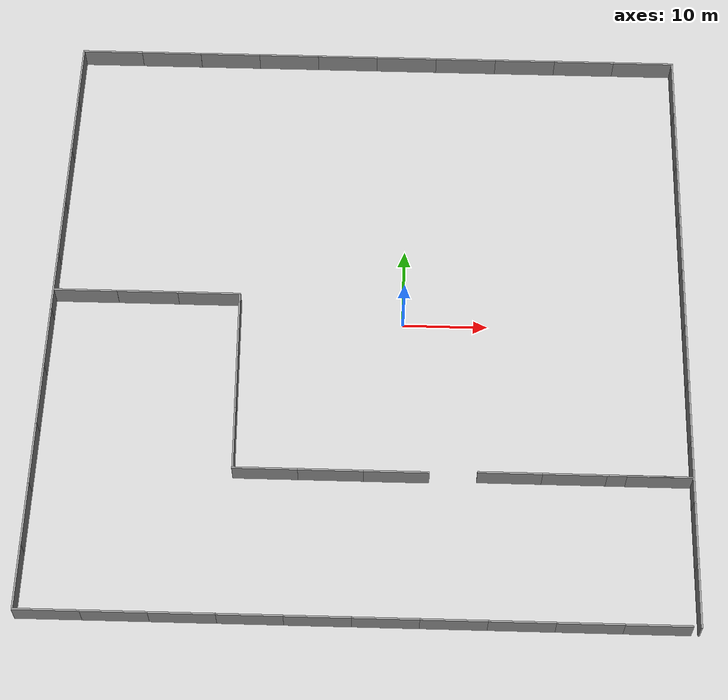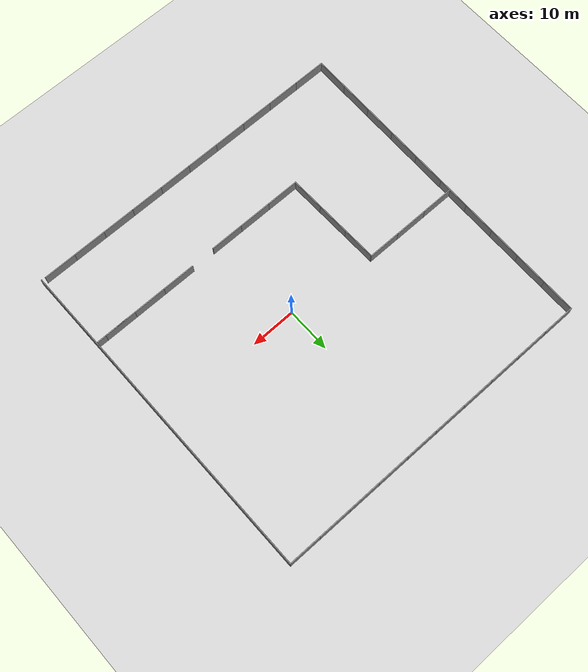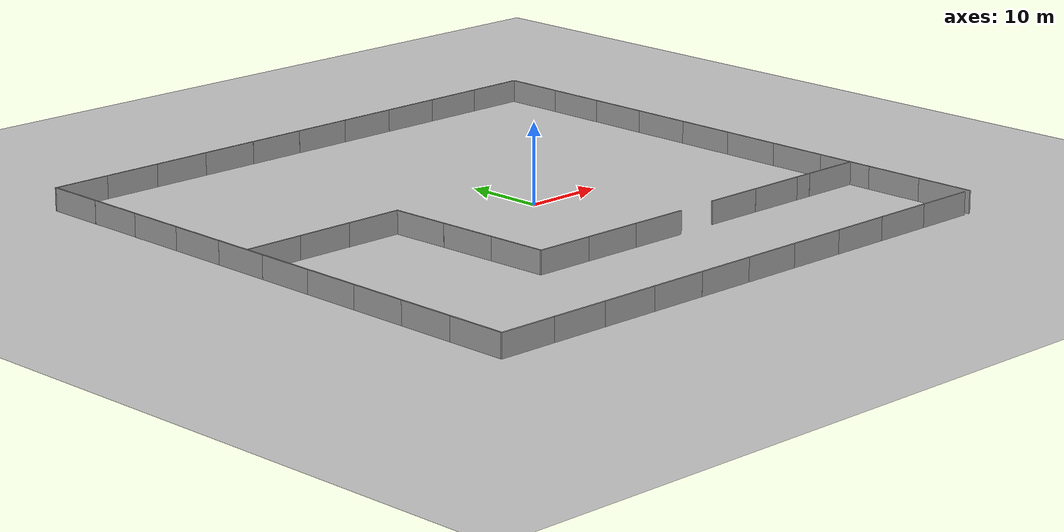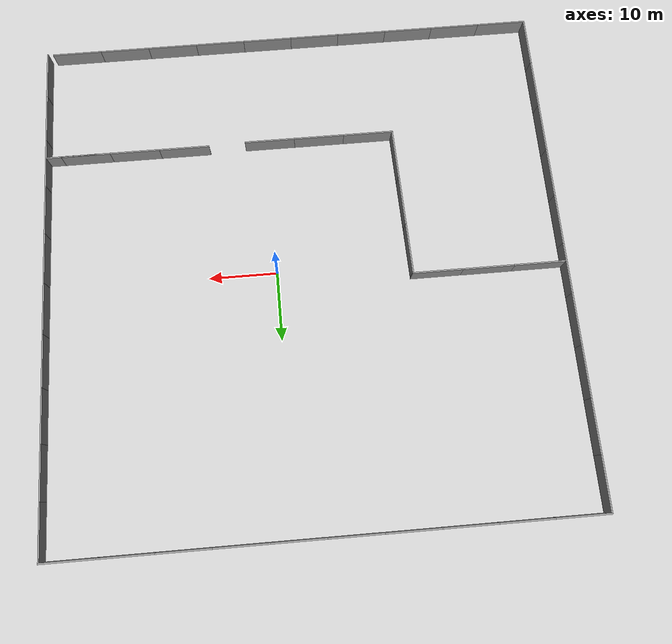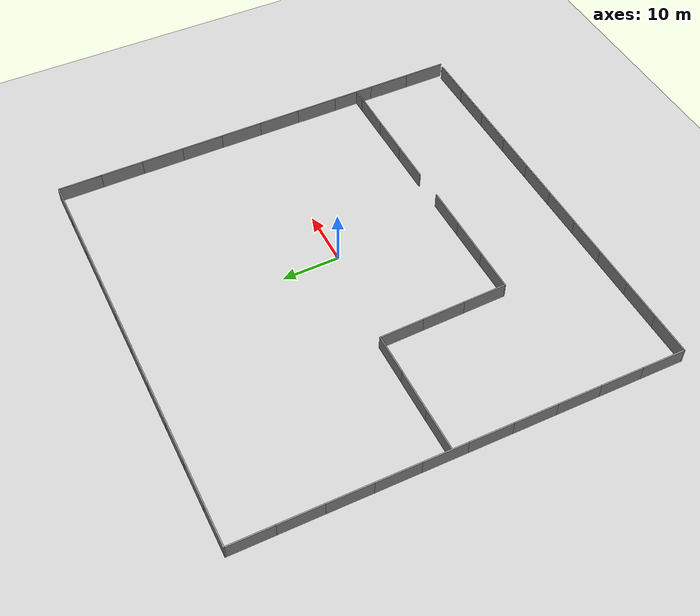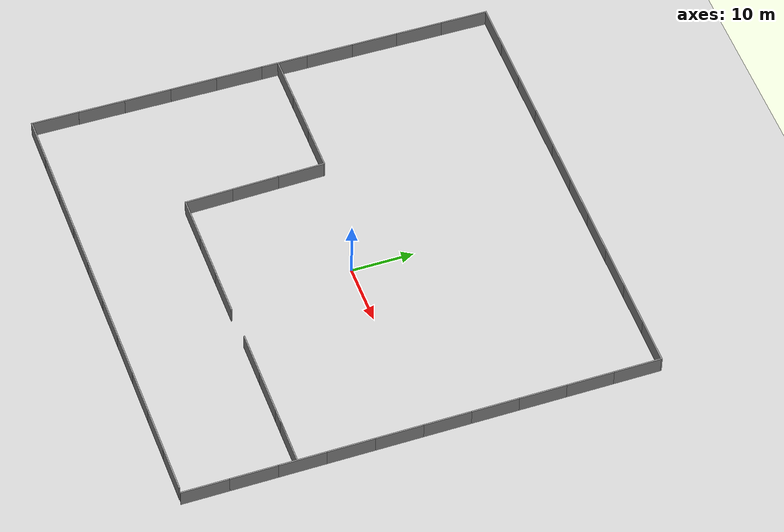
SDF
<sdf version="1.7">
 <world name="default">
  <light name="sun" type="directional">
   <pose>0 0 10 0 -0 0</pose>
   <diffuse>0.8 0.8 0.8 1</diffuse>
   <specular>0.2 0.2 0.2 1</specular>
   <attenuation>
    <range>1000</range>
    <constant>0.9</constant>
    <linear>0.01</linear>
    <quadratic>0.001</quadratic>
   </attenuation>
   <direction>-0.5 0.1 -0.9</direction>
   <spot><inner_angle>0</inner_angle><outer_angle>0</outer_angle><falloff>0</falloff></spot>
  </light>
  <model name="ground_plane">
   <static>1</static>
   <link name="link">
    <collision name="collision">
     <geometry><plane><normal>0 0 1</normal><size>100 100</size></plane></geometry>
     <surface><friction><ode><mu>100</mu><mu2>50</mu2></ode></friction></surface>
    </collision>
    <visual name="visual">
     <cast_shadows>0</cast_shadows>
     <geometry><plane><normal>0 0 1</normal><size>100 100</size></plane></geometry>
     <material>
      <script><uri>file://media/materials/scripts/gazebo.material</uri><name>Gazebo/Grey</name></script>
     </material>
    </visual>
   </link>
  </model>
  <gravity>0 0 -9.8</gravity>
  <magnetic_field>6e-06 2.3e-05 -4.2e-05</magnetic_field>
  <atmosphere type="adiabatic"/>
  <physics type="ode">
   <max_step_size>0.001</max_step_size>
   <real_time_factor>1</real_time_factor>
   <real_time_update_rate>1000</real_time_update_rate>
  </physics>
  <scene><ambient>0.4 0.4 0.4 1</ambient><background>0.7 0.7 0.7 1</background><shadows>1</shadows></scene>
  <spherical_coordinates>
   <surface_model>EARTH_WGS84</surface_model>
   <latitude_deg>0</latitude_deg>
   <longitude_deg>0</longitude_deg>
   <elevation>0</elevation>
   <heading_deg>0</heading_deg>
  </spherical_coordinates>
  <model name="grey_wall">
   <static>1</static>
   <link name="link">
    <pose>0 0 1.4 0 -0 0</pose>
    <collision name="collision"><geometry><box><size>7.5 0.2 2.8</size></box></geometry></collision>
    <visual name="visual">
     <cast_shadows>0</cast_shadows>
     <geometry><box><size>7.5 0.2 2.8</size></box></geometry>
     <material>
      <script>
       <uri>model://grey_wall/materials/scripts</uri>
       <uri>model://grey_wall/materials/textures</uri>
       <name>vrc/grey_wall</name>
      </script>
     </material>
    </visual>
   </link>
   <pose>29.6225 37.0401 0 0 -0 0</pose>
  </model>
  <model name="grey_wall_0">
   <static>1</static>
   <link name="link">
    <pose>0 0 1.4 0 -0 0</pose>
    <collision name="collision"><geometry><box><size>7.5 0.2 2.8</size></box></geometry></collision>
    <visual name="visual">
     <cast_shadows>0</cast_shadows>
     <geometry><box><size>7.5 0.2 2.8</size></box></geometry>
     <material>
      <script>
       <uri>model://grey_wall/materials/scripts</uri>
       <uri>model://grey_wall/materials/textures</uri>
       <name>vrc/grey_wall</name>
      </script>
     </material>
    </visual>
   </link>
   <pose>22.1615 37.0411 0 0 -0 0</pose>
  </model>
  <model name="grey_wall_1">
   <static>1</static>
   <link name="link">
    <pose>0 0 1.4 0 -0 0</pose>
    <collision name="collision"><geometry><box><size>7.5 0.2 2.8</size></box></geometry></collision>
    <visual name="visual">
     <cast_shadows>0</cast_shadows>
     <geometry><box><size>7.5 0.2 2.8</size></box></geometry>
     <material>
      <script>
       <uri>model://grey_wall/materials/scripts</uri>
       <uri>model://grey_wall/materials/textures</uri>
       <name>vrc/grey_wall</name>
      </script>
     </material>
    </visual>
   </link>
   <pose>-37.5826 37.0494 0 0 -0 0</pose>
  </model>
  <model name="grey_wall_2">
   <static>1</static>
   <link name="link">
    <pose>0 0 1.4 0 -0 0</pose>
    <collision name="collision"><geometry><box><size>7.5 0.2 2.8</size></box></geometry></collision>
    <visual name="visual">
     <cast_shadows>0</cast_shadows>
     <geometry><box><size>7.5 0.2 2.8</size></box></geometry>
     <material>
      <script>
       <uri>model://grey_wall/materials/scripts</uri>
       <uri>model://grey_wall/materials/textures</uri>
       <name>vrc/grey_wall</name>
      </script>
     </material>
    </visual>
   </link>
   <pose>-38.5682 -37.8522 0 0 -0 0</pose>
  </model>
  <model name="grey_wall_3">
   <static>1</static>
   <link name="link">
    <pose>0 0 1.4 0 -0 0</pose>
    <collision name="collision"><geometry><box><size>7.5 0.2 2.8</size></box></geometry></collision>
    <visual name="visual">
     <cast_shadows>0</cast_shadows>
     <geometry><box><size>7.5 0.2 2.8</size></box></geometry>
     <material>
      <script>
       <uri>model://grey_wall/materials/scripts</uri>
       <uri>model://grey_wall/materials/textures</uri>
       <name>vrc/grey_wall</name>
      </script>
     </material>
    </visual>
   </link>
   <pose>28.7048 -37.8446 0 0 -0 0</pose>
  </model>
  <model name="grey_wall_4">
   <static>1</static>
   <link name="link">
    <pose>0 0 1.4 0 -0 0</pose>
    <collision name="collision"><geometry><box><size>7.5 0.2 2.8</size></box></geometry></collision>
    <visual name="visual">
     <cast_shadows>0</cast_shadows>
     <geometry><box><size>7.5 0.2 2.8</size></box></geometry>
     <material>
      <script>
       <uri>model://grey_wall/materials/scripts</uri>
       <uri>model://grey_wall/materials/textures</uri>
       <name>vrc/grey_wall</name>
      </script>
     </material>
    </visual>
   </link>
   <pose>14.6901 37.0384 0 0 -0 0</pose>
  </model>
  <model name="grey_wall_5">
   <static>1</static>
   <link name="link">
    <pose>0 0 1.4 0 -0 0</pose>
    <collision name="collision"><geometry><box><size>7.5 0.2 2.8</size></box></geometry></collision>
    <visual name="visual">
     <cast_shadows>0</cast_shadows>
     <geometry><box><size>7.5 0.2 2.8</size></box></geometry>
     <material>
      <script>
       <uri>model://grey_wall/materials/scripts</uri>
       <uri>model://grey_wall/materials/textures</uri>
       <name>vrc/grey_wall</name>
      </script>
     </material>
    </visual>
   </link>
   <pose>7.21134 37.038 0 0 -0 0</pose>
  </model>
  <model name="grey_wall_6">
   <static>1</static>
   <link name="link">
    <pose>0 0 1.4 0 -0 0</pose>
    <collision name="collision"><geometry><box><size>7.5 0.2 2.8</size></box></geometry></collision>
    <visual name="visual">
     <cast_shadows>0</cast_shadows>
     <geometry><box><size>7.5 0.2 2.8</size></box></geometry>
     <material>
      <script>
       <uri>model://grey_wall/materials/scripts</uri>
       <uri>model://grey_wall/materials/textures</uri>
       <name>vrc/grey_wall</name>
      </script>
     </material>
    </visual>
   </link>
   <pose>-0.282909 37.041 0 0 -0 0</pose>
  </model>
  <model name="grey_wall_7">
   <static>1</static>
   <link name="link">
    <pose>0 0 1.4 0 -0 0</pose>
    <collision name="collision"><geometry><box><size>7.5 0.2 2.8</size></box></geometry></collision>
    <visual name="visual">
     <cast_shadows>0</cast_shadows>
     <geometry><box><size>7.5 0.2 2.8</size></box></geometry>
     <material>
      <script>
       <uri>model://grey_wall/materials/scripts</uri>
       <uri>model://grey_wall/materials/textures</uri>
       <name>vrc/grey_wall</name>
      </script>
     </material>
    </visual>
   </link>
   <pose>-7.73115 37.0481 0 0 -0 0</pose>
  </model>
  <model name="grey_wall_8">
   <static>1</static>
   <link name="link">
    <pose>0 0 1.4 0 -0 0</pose>
    <collision name="collision"><geometry><box><size>7.5 0.2 2.8</size></box></geometry></collision>
    <visual name="visual">
     <cast_shadows>0</cast_shadows>
     <geometry><box><size>7.5 0.2 2.8</size></box></geometry>
     <material>
      <script>
       <uri>model://grey_wall/materials/scripts</uri>
       <uri>model://grey_wall/materials/textures</uri>
       <name>vrc/grey_wall</name>
      </script>
     </material>
    </visual>
   </link>
   <pose>-15.2059 37.057 0 0 -0 0</pose>
  </model>
  <model name="grey_wall_9">
   <static>1</static>
   <link name="link">
    <pose>0 0 1.4 0 -0 0</pose>
    <collision name="collision"><geometry><box><size>7.5 0.2 2.8</size></box></geometry></collision>
    <visual name="visual">
     <cast_shadows>0</cast_shadows>
     <geometry><box><size>7.5 0.2 2.8</size></box></geometry>
     <material>
      <script>
       <uri>model://grey_wall/materials/scripts</uri>
       <uri>model://grey_wall/materials/textures</uri>
       <name>vrc/grey_wall</name>
      </script>
     </material>
    </visual>
   </link>
   <pose>-22.6759 37.0531 0 0 -0 0</pose>
  </model>
  <model name="grey_wall_10">
   <static>1</static>
   <link name="link">
    <pose>0 0 1.4 0 -0 0</pose>
    <collision name="collision"><geometry><box><size>7.5 0.2 2.8</size></box></geometry></collision>
    <visual name="visual">
     <cast_shadows>0</cast_shadows>
     <geometry><box><size>7.5 0.2 2.8</size></box></geometry>
     <material>
      <script>
       <uri>model://grey_wall/materials/scripts</uri>
       <uri>model://grey_wall/materials/textures</uri>
       <name>vrc/grey_wall</name>
      </script>
     </material>
    </visual>
   </link>
   <pose>-30.1341 37.0503 0 0 -0 0</pose>
  </model>
  <model name="grey_wall_11">
   <static>1</static>
   <link name="link">
    <pose>0 0 1.4 0 -0 0</pose>
    <collision name="collision"><geometry><box><size>7.5 0.2 2.8</size></box></geometry></collision>
    <visual name="visual">
     <cast_shadows>0</cast_shadows>
     <geometry><box><size>7.5 0.2 2.8</size></box></geometry>
     <material>
      <script>
       <uri>model://grey_wall/materials/scripts</uri>
       <uri>model://grey_wall/materials/textures</uri>
       <name>vrc/grey_wall</name>
      </script>
     </material>
    </visual>
   </link>
   <pose>-41.2796 33.2484 0 0 -0 1.55748</pose>
  </model>
  <model name="grey_wall_11_clone">
   <static>1</static>
   <link name="link">
    <pose>0 0 1.4 0 -0 0</pose>
    <collision name="collision"><geometry><box><size>7.5 0.2 2.8</size></box></geometry></collision>
    <visual name="visual">
     <cast_shadows>0</cast_shadows>
     <geometry><box><size>7.5 0.2 2.8</size></box></geometry>
     <material>
      <script>
       <uri>model://grey_wall/materials/scripts</uri>
       <uri>model://grey_wall/materials/textures</uri>
       <name>vrc/grey_wall</name>
      </script>
     </material>
    </visual>
   </link>
   <pose>-41.3699 25.7757 0 0 -0 1.55748</pose>
  </model>
  <model name="grey_wall_11_clone_0">
   <static>1</static>
   <link name="link">
    <pose>0 0 1.4 0 -0 0</pose>
    <collision name="collision"><geometry><box><size>7.5 0.2 2.8</size></box></geometry></collision>
    <visual name="visual">
     <cast_shadows>0</cast_shadows>
     <geometry><box><size>7.5 0.2 2.8</size></box></geometry>
     <material>
      <script>
       <uri>model://grey_wall/materials/scripts</uri>
       <uri>model://grey_wall/materials/textures</uri>
       <name>vrc/grey_wall</name>
      </script>
     </material>
    </visual>
   </link>
   <pose>-41.4741 18.3703 0 0 -0 1.55748</pose>
  </model>
  <model name="grey_wall_11_clone_1">
   <static>1</static>
   <link name="link">
    <pose>0 0 1.4 0 -0 0</pose>
    <collision name="collision"><geometry><box><size>7.5 0.2 2.8</size></box></geometry></collision>
    <visual name="visual">
     <cast_shadows>0</cast_shadows>
     <geometry><box><size>7.5 0.2 2.8</size></box></geometry>
     <material>
      <script>
       <uri>model://grey_wall/materials/scripts</uri>
       <uri>model://grey_wall/materials/textures</uri>
       <name>vrc/grey_wall</name>
      </script>
     </material>
    </visual>
   </link>
   <pose>-41.574 10.874 0 0 -0 1.55748</pose>
  </model>
  <model name="grey_wall_11_clone_2">
   <static>1</static>
   <link name="link">
    <pose>0 0 1.4 0 -0 0</pose>
    <collision name="collision"><geometry><box><size>7.5 0.2 2.8</size></box></geometry></collision>
    <visual name="visual">
     <cast_shadows>0</cast_shadows>
     <geometry><box><size>7.5 0.2 2.8</size></box></geometry>
     <material>
      <script>
       <uri>model://grey_wall/materials/scripts</uri>
       <uri>model://grey_wall/materials/textures</uri>
       <name>vrc/grey_wall</name>
      </script>
     </material>
    </visual>
   </link>
   <pose>-41.6727 3.39004 0 0 -0 1.55748</pose>
  </model>
  <model name="grey_wall_11_clone_3">
   <static>1</static>
   <link name="link">
    <pose>0 0 1.4 0 -0 0</pose>
    <collision name="collision"><geometry><box><size>7.5 0.2 2.8</size></box></geometry></collision>
    <visual name="visual">
     <cast_shadows>0</cast_shadows>
     <geometry><box><size>7.5 0.2 2.8</size></box></geometry>
     <material>
      <script>
       <uri>model://grey_wall/materials/scripts</uri>
       <uri>model://grey_wall/materials/textures</uri>
       <name>vrc/grey_wall</name>
      </script>
     </material>
    </visual>
   </link>
   <pose>-41.7706 -4.10986 0 0 -0 1.55748</pose>
  </model>
  <model name="grey_wall_11_clone_4">
   <static>1</static>
   <link name="link">
    <pose>0 0 1.4 0 -0 0</pose>
    <collision name="collision"><geometry><box><size>7.5 0.2 2.8</size></box></geometry></collision>
    <visual name="visual">
     <cast_shadows>0</cast_shadows>
     <geometry><box><size>7.5 0.2 2.8</size></box></geometry>
     <material>
      <script>
       <uri>model://grey_wall/materials/scripts</uri>
       <uri>model://grey_wall/materials/textures</uri>
       <name>vrc/grey_wall</name>
      </script>
     </material>
    </visual>
   </link>
   <pose>-41.8693 -11.6077 0 0 -0 1.55748</pose>
  </model>
  <model name="grey_wall_11_clone_5">
   <static>1</static>
   <link name="link">
    <pose>0 0 1.4 0 -0 0</pose>
    <collision name="collision"><geometry><box><size>7.5 0.2 2.8</size></box></geometry></collision>
    <visual name="visual">
     <cast_shadows>0</cast_shadows>
     <geometry><box><size>7.5 0.2 2.8</size></box></geometry>
     <material>
      <script>
       <uri>model://grey_wall/materials/scripts</uri>
       <uri>model://grey_wall/materials/textures</uri>
       <name>vrc/grey_wall</name>
      </script>
     </material>
    </visual>
   </link>
   <pose>-41.9653 -19.0883 0 0 -0 1.55748</pose>
  </model>
  <model name="grey_wall_11_clone_6">
   <static>1</static>
   <link name="link">
    <pose>0 0 1.4 0 -0 0</pose>
    <collision name="collision"><geometry><box><size>7.5 0.2 2.8</size></box></geometry></collision>
    <visual name="visual">
     <cast_shadows>0</cast_shadows>
     <geometry><box><size>7.5 0.2 2.8</size></box></geometry>
     <material>
      <script>
       <uri>model://grey_wall/materials/scripts</uri>
       <uri>model://grey_wall/materials/textures</uri>
       <name>vrc/grey_wall</name>
      </script>
     </material>
    </visual>
   </link>
   <pose>-42.0672 -26.5822 0 0 -0 1.55748</pose>
  </model>
  <model name="grey_wall_11_clone_7">
   <static>1</static>
   <link name="link">
    <pose>0 0 1.4 0 -0 0</pose>
    <collision name="collision"><geometry><box><size>7.5 0.2 2.8</size></box></geometry></collision>
    <visual name="visual">
     <cast_shadows>0</cast_shadows>
     <geometry><box><size>7.5 0.2 2.8</size></box></geometry>
     <material>
      <script>
       <uri>model://grey_wall/materials/scripts</uri>
       <uri>model://grey_wall/materials/textures</uri>
       <name>vrc/grey_wall</name>
      </script>
     </material>
    </visual>
   </link>
   <pose>-42.1706 -34.0134 0 0 -0 1.55748</pose>
  </model>
  <model name="grey_wall_12">
   <static>1</static>
   <link name="link">
    <pose>0 0 1.4 0 -0 0</pose>
    <collision name="collision"><geometry><box><size>7.5 0.2 2.8</size></box></geometry></collision>
    <visual name="visual">
     <cast_shadows>0</cast_shadows>
     <geometry><box><size>7.5 0.2 2.8</size></box></geometry>
     <material>
      <script>
       <uri>model://grey_wall/materials/scripts</uri>
       <uri>model://grey_wall/materials/textures</uri>
       <name>vrc/grey_wall</name>
      </script>
     </material>
    </visual>
   </link>
   <pose>-31.1031 -37.8492 0 0 -0 0</pose>
  </model>
  <model name="grey_wall_13">
   <static>1</static>
   <link name="link">
    <pose>0 0 1.4 0 -0 0</pose>
    <collision name="collision"><geometry><box><size>7.5 0.2 2.8</size></box></geometry></collision>
    <visual name="visual">
     <cast_shadows>0</cast_shadows>
     <geometry><box><size>7.5 0.2 2.8</size></box></geometry>
     <material>
      <script>
       <uri>model://grey_wall/materials/scripts</uri>
       <uri>model://grey_wall/materials/textures</uri>
       <name>vrc/grey_wall</name>
      </script>
     </material>
    </visual>
   </link>
   <pose>-23.6346 -37.8487 0 0 -0 0</pose>
  </model>
  <model name="grey_wall_14">
   <static>1</static>
   <link name="link">
    <pose>0 0 1.4 0 -0 0</pose>
    <collision name="collision"><geometry><box><size>7.5 0.2 2.8</size></box></geometry></collision>
    <visual name="visual">
     <cast_shadows>0</cast_shadows>
     <geometry><box><size>7.5 0.2 2.8</size></box></geometry>
     <material>
      <script>
       <uri>model://grey_wall/materials/scripts</uri>
       <uri>model://grey_wall/materials/textures</uri>
       <name>vrc/grey_wall</name>
      </script>
     </material>
    </visual>
   </link>
   <pose>-16.2179 -37.8418 0 0 -0 0</pose>
  </model>
  <model name="grey_wall_15">
   <static>1</static>
   <link name="link">
    <pose>0 0 1.4 0 -0 0</pose>
    <collision name="collision"><geometry><box><size>7.5 0.2 2.8</size></box></geometry></collision>
    <visual name="visual">
     <cast_shadows>0</cast_shadows>
     <geometry><box><size>7.5 0.2 2.8</size></box></geometry>
     <material>
      <script>
       <uri>model://grey_wall/materials/scripts</uri>
       <uri>model://grey_wall/materials/textures</uri>
       <name>vrc/grey_wall</name>
      </script>
     </material>
    </visual>
   </link>
   <pose>-8.73215 -37.846 0 0 -0 0</pose>
  </model>
  <model name="grey_wall_16">
   <static>1</static>
   <link name="link">
    <pose>0 0 1.4 0 -0 0</pose>
    <collision name="collision"><geometry><box><size>7.5 0.2 2.8</size></box></geometry></collision>
    <visual name="visual">
     <cast_shadows>0</cast_shadows>
     <geometry><box><size>7.5 0.2 2.8</size></box></geometry>
     <material>
      <script>
       <uri>model://grey_wall/materials/scripts</uri>
       <uri>model://grey_wall/materials/textures</uri>
       <name>vrc/grey_wall</name>
      </script>
     </material>
    </visual>
   </link>
   <pose>-1.25535 -37.8433 0 0 -0 0</pose>
  </model>
  <model name="grey_wall_17">
   <static>1</static>
   <link name="link">
    <pose>0 0 1.4 0 -0 0</pose>
    <collision name="collision"><geometry><box><size>7.5 0.2 2.8</size></box></geometry></collision>
    <visual name="visual">
     <cast_shadows>0</cast_shadows>
     <geometry><box><size>7.5 0.2 2.8</size></box></geometry>
     <material>
      <script>
       <uri>model://grey_wall/materials/scripts</uri>
       <uri>model://grey_wall/materials/textures</uri>
       <name>vrc/grey_wall</name>
      </script>
     </material>
    </visual>
   </link>
   <pose>6.23388 -37.8414 0 0 -0 0</pose>
  </model>
  <model name="grey_wall_18">
   <static>1</static>
   <link name="link">
    <pose>0 0 1.4 0 -0 0</pose>
    <collision name="collision"><geometry><box><size>7.5 0.2 2.8</size></box></geometry></collision>
    <visual name="visual">
     <cast_shadows>0</cast_shadows>
     <geometry><box><size>7.5 0.2 2.8</size></box></geometry>
     <material>
      <script>
       <uri>model://grey_wall/materials/scripts</uri>
       <uri>model://grey_wall/materials/textures</uri>
       <name>vrc/grey_wall</name>
      </script>
     </material>
    </visual>
   </link>
   <pose>13.7225 -37.8404 0 0 -0 0</pose>
  </model>
  <model name="grey_wall_19">
   <static>1</static>
   <link name="link">
    <pose>0 0 1.4 0 -0 0</pose>
    <collision name="collision"><geometry><box><size>7.5 0.2 2.8</size></box></geometry></collision>
    <visual name="visual">
     <cast_shadows>0</cast_shadows>
     <geometry><box><size>7.5 0.2 2.8</size></box></geometry>
     <material>
      <script>
       <uri>model://grey_wall/materials/scripts</uri>
       <uri>model://grey_wall/materials/textures</uri>
       <name>vrc/grey_wall</name>
      </script>
     </material>
    </visual>
   </link>
   <pose>21.213 -37.8434 0 0 -0 0</pose>
  </model>
  <model name="grey_wall_20">
   <static>1</static>
   <link name="link">
    <pose>0 0 1.4 0 -0 0</pose>
    <collision name="collision"><geometry><box><size>7.5 0.2 2.8</size></box></geometry></collision>
    <visual name="visual">
     <cast_shadows>0</cast_shadows>
     <geometry><box><size>7.5 0.2 2.8</size></box></geometry>
     <material>
      <script>
       <uri>model://grey_wall/materials/scripts</uri>
       <uri>model://grey_wall/materials/textures</uri>
       <name>vrc/grey_wall</name>
      </script>
     </material>
    </visual>
   </link>
   <pose>33.2732 33.1952 0 0 0 -1.57061</pose>
  </model>
  <model name="grey_wall_20_clone">
   <static>1</static>
   <link name="link">
    <pose>0 0 1.4 0 -0 0</pose>
    <collision name="collision"><geometry><box><size>7.5 0.2 2.8</size></box></geometry></collision>
    <visual name="visual">
     <cast_shadows>0</cast_shadows>
     <geometry><box><size>7.5 0.2 2.8</size></box></geometry>
     <material>
      <script>
       <uri>model://grey_wall/materials/scripts</uri>
       <uri>model://grey_wall/materials/textures</uri>
       <name>vrc/grey_wall</name>
      </script>
     </material>
    </visual>
   </link>
   <pose>33.2755 25.7103 0 0 0 -1.57061</pose>
  </model>
  <model name="grey_wall_20_clone_0">
   <static>1</static>
   <link name="link">
    <pose>0 0 1.4 0 -0 0</pose>
    <collision name="collision"><geometry><box><size>7.5 0.2 2.8</size></box></geometry></collision>
    <visual name="visual">
     <cast_shadows>0</cast_shadows>
     <geometry><box><size>7.5 0.2 2.8</size></box></geometry>
     <material>
      <script>
       <uri>model://grey_wall/materials/scripts</uri>
       <uri>model://grey_wall/materials/textures</uri>
       <name>vrc/grey_wall</name>
      </script>
     </material>
    </visual>
   </link>
   <pose>33.2787 18.211 0 0 0 -1.57061</pose>
  </model>
  <model name="grey_wall_20_clone_1">
   <static>1</static>
   <link name="link">
    <pose>0 0 1.4 0 -0 0</pose>
    <collision name="collision"><geometry><box><size>7.5 0.2 2.8</size></box></geometry></collision>
    <visual name="visual">
     <cast_shadows>0</cast_shadows>
     <geometry><box><size>7.5 0.2 2.8</size></box></geometry>
     <material>
      <script>
       <uri>model://grey_wall/materials/scripts</uri>
       <uri>model://grey_wall/materials/textures</uri>
       <name>vrc/grey_wall</name>
      </script>
     </material>
    </visual>
   </link>
   <pose>33.2798 10.7172 0 0 0 -1.57061</pose>
  </model>
  <model name="grey_wall_20_clone_2">
   <static>1</static>
   <link name="link">
    <pose>0 0 1.4 0 -0 0</pose>
    <collision name="collision"><geometry><box><size>7.5 0.2 2.8</size></box></geometry></collision>
    <visual name="visual">
     <cast_shadows>0</cast_shadows>
     <geometry><box><size>7.5 0.2 2.8</size></box></geometry>
     <material>
      <script>
       <uri>model://grey_wall/materials/scripts</uri>
       <uri>model://grey_wall/materials/textures</uri>
       <name>vrc/grey_wall</name>
      </script>
     </material>
    </visual>
   </link>
   <pose>33.2824 3.22327 0 0 0 -1.57061</pose>
  </model>
  <model name="grey_wall_20_clone_3">
   <static>1</static>
   <link name="link">
    <pose>0 0 1.4 0 -0 0</pose>
    <collision name="collision"><geometry><box><size>7.5 0.2 2.8</size></box></geometry></collision>
    <visual name="visual">
     <cast_shadows>0</cast_shadows>
     <geometry><box><size>7.5 0.2 2.8</size></box></geometry>
     <material>
      <script>
       <uri>model://grey_wall/materials/scripts</uri>
       <uri>model://grey_wall/materials/textures</uri>
       <name>vrc/grey_wall</name>
      </script>
     </material>
    </visual>
   </link>
   <pose>33.286 -4.27228 0 0 0 -1.57061</pose>
  </model>
  <model name="grey_wall_20_clone_4">
   <static>1</static>
   <link name="link">
    <pose>0 0 1.4 0 -0 0</pose>
    <collision name="collision"><geometry><box><size>7.5 0.2 2.8</size></box></geometry></collision>
    <visual name="visual">
     <cast_shadows>0</cast_shadows>
     <geometry><box><size>7.5 0.2 2.8</size></box></geometry>
     <material>
      <script>
       <uri>model://grey_wall/materials/scripts</uri>
       <uri>model://grey_wall/materials/textures</uri>
       <name>vrc/grey_wall</name>
      </script>
     </material>
    </visual>
   </link>
   <pose>33.2862 -11.7669 0 0 0 -1.57061</pose>
  </model>
  <model name="grey_wall_20_clone_5">
   <static>1</static>
   <link name="link">
    <pose>0 0 1.4 0 -0 0</pose>
    <collision name="collision"><geometry><box><size>7.5 0.2 2.8</size></box></geometry></collision>
    <visual name="visual">
     <cast_shadows>0</cast_shadows>
     <geometry><box><size>7.5 0.2 2.8</size></box></geometry>
     <material>
      <script>
       <uri>model://grey_wall/materials/scripts</uri>
       <uri>model://grey_wall/materials/textures</uri>
       <name>vrc/grey_wall</name>
      </script>
     </material>
    </visual>
   </link>
   <pose>33.2879 -19.2641 0 0 0 -1.57061</pose>
  </model>
  <model name="grey_wall_20_clone_6">
   <static>1</static>
   <link name="link">
    <pose>0 0 1.4 0 -0 0</pose>
    <collision name="collision"><geometry><box><size>7.5 0.2 2.8</size></box></geometry></collision>
    <visual name="visual">
     <cast_shadows>0</cast_shadows>
     <geometry><box><size>7.5 0.2 2.8</size></box></geometry>
     <material>
      <script>
       <uri>model://grey_wall/materials/scripts</uri>
       <uri>model://grey_wall/materials/textures</uri>
       <name>vrc/grey_wall</name>
      </script>
     </material>
    </visual>
   </link>
   <pose>33.2905 -26.7639 0 0 0 -1.57061</pose>
  </model>
  <model name="grey_wall_20_clone_7">
   <static>1</static>
   <link name="link">
    <pose>0 0 1.4 0 -0 0</pose>
    <collision name="collision"><geometry><box><size>7.5 0.2 2.8</size></box></geometry></collision>
    <visual name="visual">
     <cast_shadows>0</cast_shadows>
     <geometry><box><size>7.5 0.2 2.8</size></box></geometry>
     <material>
      <script>
       <uri>model://grey_wall/materials/scripts</uri>
       <uri>model://grey_wall/materials/textures</uri>
       <name>vrc/grey_wall</name>
      </script>
     </material>
    </visual>
   </link>
   <pose>33.2949 -34.2582 0 0 0 -1.57061</pose>
  </model>
  <model name="grey_wall_21">
   <static>1</static>
   <link name="link">
    <pose>0 0 1.4 0 -0 0</pose>
    <collision name="collision"><geometry><box><size>7.5 0.2 2.8</size></box></geometry></collision>
    <visual name="visual">
     <cast_shadows>0</cast_shadows>
     <geometry><box><size>7.5 0.2 2.8</size></box></geometry>
     <material>
      <script>
       <uri>model://grey_wall/materials/scripts</uri>
       <uri>model://grey_wall/materials/textures</uri>
       <name>vrc/grey_wall</name>
      </script>
     </material>
    </visual>
   </link>
   <pose>27.2352 -20.0836 0 0 -0 0</pose>
  </model>
  <model name="grey_wall_22">
   <static>1</static>
   <link name="link">
    <pose>0 0 1.4 0 -0 0</pose>
    <collision name="collision"><geometry><box><size>7.5 0.2 2.8</size></box></geometry></collision>
    <visual name="visual">
     <cast_shadows>0</cast_shadows>
     <geometry><box><size>7.5 0.2 2.8</size></box></geometry>
     <material>
      <script>
       <uri>model://grey_wall/materials/scripts</uri>
       <uri>model://grey_wall/materials/textures</uri>
       <name>vrc/grey_wall</name>
      </script>
     </material>
    </visual>
   </link>
   <pose>19.9099 -20.0825 0 0 -0 0</pose>
  </model>
  <model name="grey_wall_23">
   <static>1</static>
   <link name="link">
    <pose>0 0 1.4 0 -0 0</pose>
    <collision name="collision"><geometry><box><size>7.5 0.2 2.8</size></box></geometry></collision>
    <visual name="visual">
     <cast_shadows>0</cast_shadows>
     <geometry><box><size>7.5 0.2 2.8</size></box></geometry>
     <material>
      <script>
       <uri>model://grey_wall/materials/scripts</uri>
       <uri>model://grey_wall/materials/textures</uri>
       <name>vrc/grey_wall</name>
      </script>
     </material>
    </visual>
   </link>
   <pose>12.5152 -20.0775 0 0 -0 0</pose>
  </model>
  <model name="grey_wall_24">
   <static>1</static>
   <link name="link">
    <pose>0 0 1.4 0 -0 0</pose>
    <collision name="collision"><geometry><box><size>7.5 0.2 2.8</size></box></geometry></collision>
    <visual name="visual">
     <cast_shadows>0</cast_shadows>
     <geometry><box><size>7.5 0.2 2.8</size></box></geometry>
     <material>
      <script>
       <uri>model://grey_wall/materials/scripts</uri>
       <uri>model://grey_wall/materials/textures</uri>
       <name>vrc/grey_wall</name>
      </script>
     </material>
    </visual>
   </link>
   <pose>-37.8328 2.33945 0 0 -0 0</pose>
  </model>
  <model name="grey_wall_25">
   <static>1</static>
   <link name="link">
    <pose>0 0 1.4 0 -0 0</pose>
    <collision name="collision"><geometry><box><size>7.5 0.2 2.8</size></box></geometry></collision>
    <visual name="visual">
     <cast_shadows>0</cast_shadows>
     <geometry><box><size>7.5 0.2 2.8</size></box></geometry>
     <material>
      <script>
       <uri>model://grey_wall/materials/scripts</uri>
       <uri>model://grey_wall/materials/textures</uri>
       <name>vrc/grey_wall</name>
      </script>
     </material>
    </visual>
   </link>
   <pose>-30.4592 2.34738 0 0 -0 0</pose>
  </model>
  <model name="grey_wall_26">
   <static>1</static>
   <link name="link">
    <pose>0 0 1.4 0 -0 0</pose>
    <collision name="collision"><geometry><box><size>7.5 0.2 2.8</size></box></geometry></collision>
    <visual name="visual">
     <cast_shadows>0</cast_shadows>
     <geometry><box><size>7.5 0.2 2.8</size></box></geometry>
     <material>
      <script>
       <uri>model://grey_wall/materials/scripts</uri>
       <uri>model://grey_wall/materials/textures</uri>
       <name>vrc/grey_wall</name>
      </script>
     </material>
    </visual>
   </link>
   <pose>-23.115 2.33079 0 0 -0 0</pose>
  </model>
  <model name="grey_wall_27">
   <static>1</static>
   <link name="link">
    <pose>0 0 1.4 0 -0 0</pose>
    <collision name="collision"><geometry><box><size>7.5 0.2 2.8</size></box></geometry></collision>
    <visual name="visual">
     <cast_shadows>0</cast_shadows>
     <geometry><box><size>7.5 0.2 2.8</size></box></geometry>
     <material>
      <script>
       <uri>model://grey_wall/materials/scripts</uri>
       <uri>model://grey_wall/materials/textures</uri>
       <name>vrc/grey_wall</name>
      </script>
     </material>
    </visual>
   </link>
   <pose>-19.4006 -1.50109 0 0 0 -1.55235</pose>
  </model>
  <model name="grey_wall_27_clone">
   <static>1</static>
   <link name="link">
    <pose>0 0 1.4 0 -0 0</pose>
    <collision name="collision"><geometry><box><size>7.5 0.2 2.8</size></box></geometry></collision>
    <visual name="visual">
     <cast_shadows>0</cast_shadows>
     <geometry><box><size>7.5 0.2 2.8</size></box></geometry>
     <material>
      <script>
       <uri>model://grey_wall/materials/scripts</uri>
       <uri>model://grey_wall/materials/textures</uri>
       <name>vrc/grey_wall</name>
      </script>
     </material>
    </visual>
   </link>
   <pose>-19.2586 -8.94924 0 0 0 -1.55235</pose>
  </model>
  <model name="grey_wall_27_clone_0">
   <static>1</static>
   <link name="link">
    <pose>0 0 1.4 0 -0 0</pose>
    <collision name="collision"><geometry><box><size>7.5 0.2 2.8</size></box></geometry></collision>
    <visual name="visual">
     <cast_shadows>0</cast_shadows>
     <geometry><box><size>7.5 0.2 2.8</size></box></geometry>
     <material>
      <script>
       <uri>model://grey_wall/materials/scripts</uri>
       <uri>model://grey_wall/materials/textures</uri>
       <name>vrc/grey_wall</name>
      </script>
     </material>
    </visual>
   </link>
   <pose>-19.1155 -16.4256 0 0 0 -1.55235</pose>
  </model>
  <model name="grey_wall_28">
   <static>1</static>
   <link name="link">
    <pose>0 0 1.4 0 -0 0</pose>
    <collision name="collision"><geometry><box><size>7.5 0.2 2.8</size></box></geometry></collision>
    <visual name="visual">
     <cast_shadows>0</cast_shadows>
     <geometry><box><size>7.5 0.2 2.8</size></box></geometry>
     <material>
      <script>
       <uri>model://grey_wall/materials/scripts</uri>
       <uri>model://grey_wall/materials/textures</uri>
       <name>vrc/grey_wall</name>
      </script>
     </material>
    </visual>
   </link>
   <pose>-15.402 -20.2514 0 0 -0 0</pose>
  </model>
  <model name="grey_wall_29">
   <static>1</static>
   <link name="link">
    <pose>0 0 1.4 0 -0 0</pose>
    <collision name="collision"><geometry><box><size>7.5 0.2 2.8</size></box></geometry></collision>
    <visual name="visual">
     <cast_shadows>0</cast_shadows>
     <geometry><box><size>7.5 0.2 2.8</size></box></geometry>
     <material>
      <script>
       <uri>model://grey_wall/materials/scripts</uri>
       <uri>model://grey_wall/materials/textures</uri>
       <name>vrc/grey_wall</name>
      </script>
     </material>
    </visual>
   </link>
   <pose>-7.906 -20.2551 0 0 -0 0</pose>
  </model>
  <model name="grey_wall_30">
   <static>1</static>
   <link name="link">
    <pose>0 0 1.4 0 -0 0</pose>
    <collision name="collision"><geometry><box><size>7.5 0.2 2.8</size></box></geometry></collision>
    <visual name="visual">
     <cast_shadows>0</cast_shadows>
     <geometry><box><size>7.5 0.2 2.8</size></box></geometry>
     <material>
      <script>
       <uri>model://grey_wall/materials/scripts</uri>
       <uri>model://grey_wall/materials/textures</uri>
       <name>vrc/grey_wall</name>
      </script>
     </material>
    </visual>
   </link>
   <pose>-0.412278 -20.2618 0 0 -0 0</pose>
  </model>
  <model name="grey_wall_31">
   <static>1</static>
   <link name="link">
    <pose>0 0 1.4 0 -0 0</pose>
    <collision name="collision"><geometry><box><size>7.5 0.2 2.8</size></box></geometry></collision>
    <visual name="visual">
     <cast_shadows>0</cast_shadows>
     <geometry><box><size>7.5 0.2 2.8</size></box></geometry>
     <material>
      <script>
       <uri>model://grey_wall/materials/scripts</uri>
       <uri>model://grey_wall/materials/textures</uri>
       <name>vrc/grey_wall</name>
      </script>
     </material>
    </visual>
   </link>
   <pose>29.472 -20.0923 0 0 -0 0</pose>
  </model>
 </world>
</sdf>
